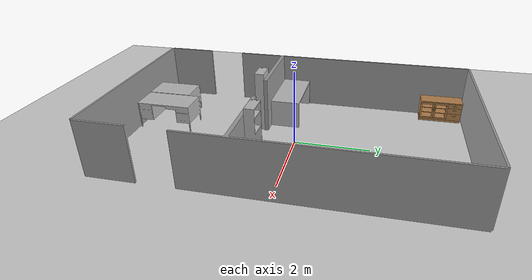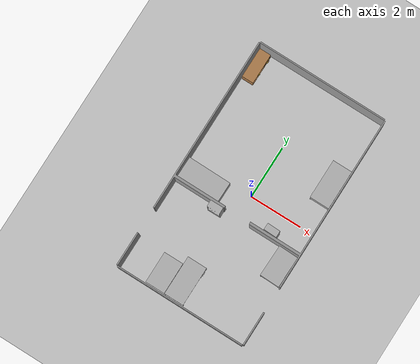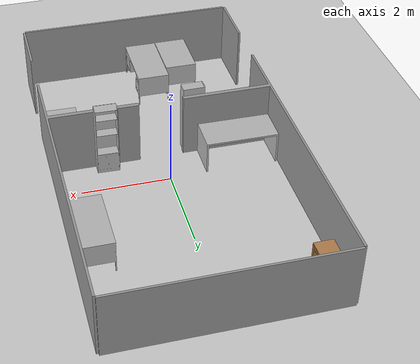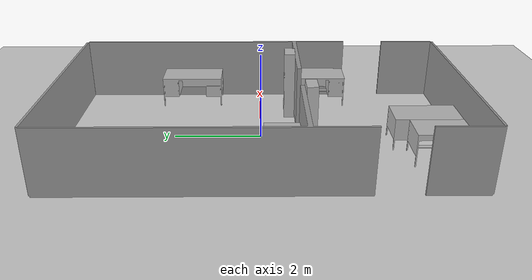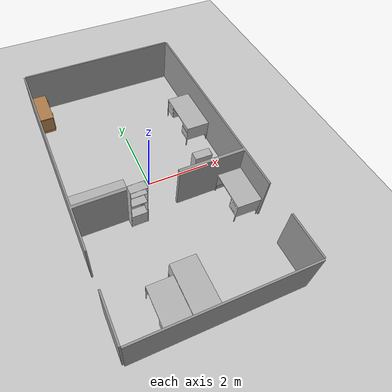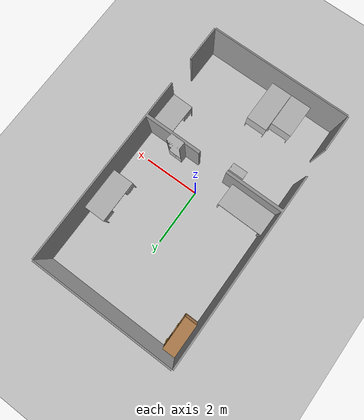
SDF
<sdf version="1.4">
 <world name="default">
  <scene>
   <ambient>0.5 0.5 0.5 1</ambient>
   <shadows>0</shadows>
   <grid>0</grid>
   <background>0.7 0.7 0.7 1</background>
  </scene>
  <physics type="ode">
   <real_time_update_rate>500.0</real_time_update_rate>
   <max_step_size>0.002</max_step_size>
   <ode><solver><type>quick</type><iters>100</iters></solver><constraints><cfm>0.0001</cfm></constraints></ode>
  </physics>
  <light name="user_directional_light_0" type="directional">
   <pose>0 0 5 0 -0 0</pose>
   <diffuse>0.5 0.5 0.5 1</diffuse>
   <specular>0.1 0.1 0.1 1</specular>
   <direction>0.1 0.1 -0.9</direction>
   <attenuation>
    <range>20</range>
    <constant>0.5</constant>
    <linear>0.01</linear>
    <quadratic>0.001</quadratic>
   </attenuation>
  </light>
  <model name="rnd_room_c3_a">
   <link name="link_0">
    <inertial>
     <mass>1</mass>
     <inertia>
      <ixx>0.166667</ixx>
      <ixy>0</ixy>
      <ixz>0</ixz>
      <iyy>0.166667</iyy>
      <iyz>0</iyz>
      <izz>0.166667</izz>
     </inertia>
    </inertial>
    <visual name="visual">
     <geometry><mesh><uri>model://RandomRooms/rnd_room_c2_06.dae</uri><scale>1 1 1</scale></mesh></geometry>
     <material>
      <lighting>1</lighting>
      <script><uri>model://RandomRooms/rnd_room_c2_06.dae</uri><name>Gazebo/Grey</name></script>
      <shader type="pixel"><normal_map>__default__</normal_map></shader>
     </material>
    </visual>
    <collision name="collision">
     <geometry><mesh><uri>model://RandomRooms/rnd_room_c2_06.dae</uri><scale>1 1 1</scale></mesh></geometry>
     <surface>
      <friction>
       <ode><mu>1</mu><mu2>1</mu2><fdir1>0 0 0</fdir1><slip1>0</slip1><slip2>0</slip2></ode>
       <torsional>
        <coefficient>1</coefficient>
        <patch_radius>0</patch_radius>
        <surface_radius>0</surface_radius>
        <use_patch_radius>1</use_patch_radius>
        <ode><slip>0</slip></ode>
       </torsional>
      </friction>
      <bounce><restitution_coefficient>0</restitution_coefficient><threshold>1e+06</threshold></bounce>
      <contact>
       <collide_without_contact>0</collide_without_contact>
       <collide_without_contact_bitmask>1</collide_without_contact_bitmask>
       <collide_bitmask>1</collide_bitmask>
       <ode>
        <soft_cfm>0</soft_cfm>
        <soft_erp>0.2</soft_erp>
        <kp>1e+13</kp>
        <kd>1</kd>
        <max_vel>0.01</max_vel>
        <min_depth>0</min_depth>
       </ode>
       <bullet>
        <split_impulse>1</split_impulse>
        <split_impulse_penetration_threshold>-0.01</split_impulse_penetration_threshold>
        <soft_cfm>0</soft_cfm>
        <soft_erp>0.2</soft_erp>
        <kp>1e+13</kp>
        <kd>1</kd>
       </bullet>
      </contact>
     </surface>
    </collision>
   </link>
   <static>1</static>
  </model>
  <model name="gplane">
   <link name="body">
    <collision name="gplane_coll">
     <geometry><plane><normal>0 0 1</normal><size>25 25</size></plane></geometry>
     <surface><contact><ode><kp>1e+06</kp><kd>1</kd></ode></contact></surface>
     <laser_retro>2000</laser_retro>
    </collision>
    <visual name="gplane_vis">
     <geometry><plane><normal>0 0 1</normal><size>25 25</size></plane></geometry>
     <material>
      <script>
       <uri>model://base_materials/carpet/scripts</uri>
       <uri>model://base_materials/carpet/textures</uri>
       <name>carpet/carpet01</name>
      </script>
     </material>
     <cast_shadows>0</cast_shadows>
    </visual>
    <velocity_decay><linear>0</linear><angular>0</angular></velocity_decay>
   </link>
   <static>1</static>
  </model>
  <model name="Shelf_02_1">
   <link name="link_0">
    <inertial>
     <mass>12</mass>
     <inertia>
      <ixx>0.166667</ixx>
      <ixy>0</ixy>
      <ixz>0</ixz>
      <iyy>0.166667</iyy>
      <iyz>0</iyz>
      <izz>0.166667</izz>
     </inertia>
    </inertial>
    <visual name="visual">
     <geometry><mesh><uri>model://BioRoboticsLab/meshes/Shelf_02.dae</uri><scale>1 1 1</scale></mesh></geometry>
     <material><lighting>1</lighting><shader type="pixel"/></material>
    </visual>
    <collision name="collision">
     <geometry><mesh><uri>model://BioRoboticsLab/meshes/Shelf_02.dae</uri><scale>1 1 1</scale></mesh></geometry>
     <surface>
      <friction>
       <ode><mu>1</mu><mu2>1</mu2><fdir1>0 0 0</fdir1><slip1>0</slip1><slip2>0</slip2></ode>
       <torsional>
        <coefficient>1</coefficient>
        <patch_radius>0</patch_radius>
        <surface_radius>0</surface_radius>
        <use_patch_radius>1</use_patch_radius>
        <ode><slip>0</slip></ode>
       </torsional>
      </friction>
      <bounce><restitution_coefficient>0</restitution_coefficient><threshold>1e+06</threshold></bounce>
      <contact>
       <collide_without_contact>0</collide_without_contact>
       <collide_without_contact_bitmask>1</collide_without_contact_bitmask>
       <collide_bitmask>1</collide_bitmask>
       <ode>
        <soft_cfm>0</soft_cfm>
        <soft_erp>0.2</soft_erp>
        <kp>1e+13</kp>
        <kd>1</kd>
        <max_vel>0.01</max_vel>
        <min_depth>0</min_depth>
       </ode>
       <bullet>
        <split_impulse>1</split_impulse>
        <split_impulse_penetration_threshold>-0.01</split_impulse_penetration_threshold>
        <soft_cfm>0</soft_cfm>
        <soft_erp>0.2</soft_erp>
        <kp>1e+13</kp>
        <kd>1</kd>
       </bullet>
      </contact>
     </surface>
    </collision>
   </link>
   <static>1</static>
   <pose>1.27283 -0.713664 -0 0 0 -0.021597</pose>
  </model>
  <model name="Shelf_02_2">
   <link name="link_0">
    <inertial>
     <mass>12</mass>
     <inertia>
      <ixx>0.166667</ixx>
      <ixy>0</ixy>
      <ixz>0</ixz>
      <iyy>0.166667</iyy>
      <iyz>0</iyz>
      <izz>0.166667</izz>
     </inertia>
    </inertial>
    <visual name="visual">
     <geometry><mesh><uri>model://BioRoboticsLab/meshes/Shelf_02.dae</uri><scale>1 1 1</scale></mesh></geometry>
     <material><lighting>1</lighting><shader type="pixel"/></material>
    </visual>
    <collision name="collision">
     <geometry><mesh><uri>model://BioRoboticsLab/meshes/Shelf_02.dae</uri><scale>1 1 1</scale></mesh></geometry>
     <surface>
      <friction>
       <ode><mu>1</mu><mu2>1</mu2><fdir1>0 0 0</fdir1><slip1>0</slip1><slip2>0</slip2></ode>
       <torsional>
        <coefficient>1</coefficient>
        <patch_radius>0</patch_radius>
        <surface_radius>0</surface_radius>
        <use_patch_radius>1</use_patch_radius>
        <ode><slip>0</slip></ode>
       </torsional>
      </friction>
      <bounce><restitution_coefficient>0</restitution_coefficient><threshold>1e+06</threshold></bounce>
      <contact>
       <collide_without_contact>0</collide_without_contact>
       <collide_without_contact_bitmask>1</collide_without_contact_bitmask>
       <collide_bitmask>1</collide_bitmask>
       <ode>
        <soft_cfm>0</soft_cfm>
        <soft_erp>0.2</soft_erp>
        <kp>1e+13</kp>
        <kd>1</kd>
        <max_vel>0.01</max_vel>
        <min_depth>0</min_depth>
       </ode>
       <bullet>
        <split_impulse>1</split_impulse>
        <split_impulse_penetration_threshold>-0.01</split_impulse_penetration_threshold>
        <soft_cfm>0</soft_cfm>
        <soft_erp>0.2</soft_erp>
        <kp>1e+13</kp>
        <kd>1</kd>
       </bullet>
      </contact>
     </surface>
    </collision>
   </link>
   <static>1</static>
   <pose>-0.772381 -1.07645 0 0 -0 -3.13241</pose>
  </model>
  <model name="Desk_03_1">
   <link name="link_0">
    <inertial>
     <mass>25</mass>
     <inertia>
      <ixx>0.166667</ixx>
      <ixy>0</ixy>
      <ixz>0</ixz>
      <iyy>0.166667</iyy>
      <iyz>0</iyz>
      <izz>0.166667</izz>
     </inertia>
    </inertial>
    <visual name="visual">
     <geometry><mesh><uri>model://BioRoboticsLab/meshes/Desk_03.dae</uri><scale>1 1 1</scale></mesh></geometry>
     <material><lighting>1</lighting><shader type="pixel"/></material>
    </visual>
    <collision name="collision">
     <geometry><mesh><uri>model://BioRoboticsLab/meshes/Desk_03.dae</uri><scale>1 1 1</scale></mesh></geometry>
     <surface>
      <friction>
       <ode><mu>1</mu><mu2>1</mu2><fdir1>0 0 0</fdir1><slip1>0</slip1><slip2>0</slip2></ode>
       <torsional>
        <coefficient>1</coefficient>
        <patch_radius>0</patch_radius>
        <surface_radius>0</surface_radius>
        <use_patch_radius>1</use_patch_radius>
        <ode><slip>0</slip></ode>
       </torsional>
      </friction>
      <bounce><restitution_coefficient>0</restitution_coefficient><threshold>1e+06</threshold></bounce>
      <contact>
       <collide_without_contact>0</collide_without_contact>
       <collide_without_contact_bitmask>1</collide_without_contact_bitmask>
       <collide_bitmask>1</collide_bitmask>
       <ode>
        <soft_cfm>0</soft_cfm>
        <soft_erp>0.2</soft_erp>
        <kp>1e+13</kp>
        <kd>1</kd>
        <max_vel>0.01</max_vel>
        <min_depth>0</min_depth>
       </ode>
       <bullet>
        <split_impulse>1</split_impulse>
        <split_impulse_penetration_threshold>-0.01</split_impulse_penetration_threshold>
        <soft_cfm>0</soft_cfm>
        <soft_erp>0.2</soft_erp>
        <kp>1e+13</kp>
        <kd>1</kd>
       </bullet>
      </contact>
     </surface>
    </collision>
   </link>
   <static>1</static>
   <pose>-1.08107 -3.84997 0 0 -0 1.57211</pose>
  </model>
  <model name="Desk_01_1">
   <link name="link_0">
    <inertial>
     <mass>35</mass>
     <inertia>
      <ixx>0.166667</ixx>
      <ixy>0</ixy>
      <ixz>0</ixz>
      <iyy>0.166667</iyy>
      <iyz>0</iyz>
      <izz>0.166667</izz>
     </inertia>
    </inertial>
    <visual name="visual">
     <geometry><mesh><uri>model://BioRoboticsLab/meshes/Desk_01.dae</uri><scale>1 1 1</scale></mesh></geometry>
     <material><lighting>1</lighting><shader type="pixel"/></material>
    </visual>
    <collision name="collision">
     <geometry><mesh><uri>model://BioRoboticsLab/meshes/Desk_01.dae</uri><scale>1 1 1</scale></mesh></geometry>
     <surface>
      <friction>
       <ode><mu>1</mu><mu2>1</mu2><fdir1>0 0 0</fdir1><slip1>0</slip1><slip2>0</slip2></ode>
       <torsional>
        <coefficient>1</coefficient>
        <patch_radius>0</patch_radius>
        <surface_radius>0</surface_radius>
        <use_patch_radius>1</use_patch_radius>
        <ode><slip>0</slip></ode>
       </torsional>
      </friction>
      <bounce><restitution_coefficient>0</restitution_coefficient><threshold>1e+06</threshold></bounce>
      <contact>
       <collide_without_contact>0</collide_without_contact>
       <collide_without_contact_bitmask>1</collide_without_contact_bitmask>
       <collide_bitmask>1</collide_bitmask>
       <ode>
        <soft_cfm>0</soft_cfm>
        <soft_erp>0.2</soft_erp>
        <kp>1e+13</kp>
        <kd>1</kd>
        <max_vel>0.01</max_vel>
        <min_depth>0</min_depth>
       </ode>
       <bullet>
        <split_impulse>1</split_impulse>
        <split_impulse_penetration_threshold>-0.01</split_impulse_penetration_threshold>
        <soft_cfm>0</soft_cfm>
        <soft_erp>0.2</soft_erp>
        <kp>1e+13</kp>
        <kd>1</kd>
       </bullet>
      </contact>
     </surface>
    </collision>
   </link>
   <static>1</static>
   <pose>-0.320742 -3.69864 0 0 -0 -1.57121</pose>
  </model>
  <model name="Desk_04_1">
   <link name="link_0">
    <inertial>
     <mass>15</mass>
     <inertia>
      <ixx>0.166667</ixx>
      <ixy>0</ixy>
      <ixz>0</ixz>
      <iyy>0.166667</iyy>
      <iyz>0</iyz>
      <izz>0.166667</izz>
     </inertia>
    </inertial>
    <visual name="visual">
     <geometry><mesh><uri>model://BioRoboticsLab/meshes/Desk_04.dae</uri><scale>1 1 1</scale></mesh></geometry>
     <material><lighting>1</lighting><shader type="pixel"/></material>
    </visual>
    <collision name="collision">
     <geometry><mesh><uri>model://BioRoboticsLab/meshes/Desk_04.dae</uri><scale>1 1 1</scale></mesh></geometry>
     <surface>
      <friction>
       <ode><mu>1</mu><mu2>1</mu2><fdir1>0 0 0</fdir1><slip1>0</slip1><slip2>0</slip2></ode>
       <torsional>
        <coefficient>1</coefficient>
        <patch_radius>0</patch_radius>
        <surface_radius>0</surface_radius>
        <use_patch_radius>1</use_patch_radius>
        <ode><slip>0</slip></ode>
       </torsional>
      </friction>
      <bounce><restitution_coefficient>0</restitution_coefficient><threshold>1e+06</threshold></bounce>
      <contact>
       <collide_without_contact>0</collide_without_contact>
       <collide_without_contact_bitmask>1</collide_without_contact_bitmask>
       <collide_bitmask>1</collide_bitmask>
       <ode>
        <soft_cfm>0</soft_cfm>
        <soft_erp>0.2</soft_erp>
        <kp>1e+13</kp>
        <kd>1</kd>
        <max_vel>0.01</max_vel>
        <min_depth>0</min_depth>
       </ode>
       <bullet>
        <split_impulse>1</split_impulse>
        <split_impulse_penetration_threshold>-0.01</split_impulse_penetration_threshold>
        <soft_cfm>0</soft_cfm>
        <soft_erp>0.2</soft_erp>
        <kp>1e+13</kp>
        <kd>1</kd>
       </bullet>
      </contact>
     </surface>
    </collision>
   </link>
   <static>1</static>
   <pose>2.10873 -1.5741 0 0 -0 1.55</pose>
  </model>
  <model name="Desk_01_2">
   <link name="link_0">
    <inertial>
     <mass>35</mass>
     <inertia>
      <ixx>0.166667</ixx>
      <ixy>0</ixy>
      <ixz>0</ixz>
      <iyy>0.166667</iyy>
      <iyz>0</iyz>
      <izz>0.166667</izz>
     </inertia>
    </inertial>
    <visual name="visual">
     <geometry><mesh><uri>model://BioRoboticsLab/meshes/Desk_01.dae</uri><scale>1 1 1</scale></mesh></geometry>
     <material><lighting>1</lighting><shader type="pixel"/></material>
    </visual>
    <collision name="collision">
     <geometry><mesh><uri>model://BioRoboticsLab/meshes/Desk_01.dae</uri><scale>1 1 1</scale></mesh></geometry>
     <surface>
      <friction>
       <ode><mu>1</mu><mu2>1</mu2><fdir1>0 0 0</fdir1><slip1>0</slip1><slip2>0</slip2></ode>
       <torsional>
        <coefficient>1</coefficient>
        <patch_radius>0</patch_radius>
        <surface_radius>0</surface_radius>
        <use_patch_radius>1</use_patch_radius>
        <ode><slip>0</slip></ode>
       </torsional>
      </friction>
      <bounce><restitution_coefficient>0</restitution_coefficient><threshold>1e+06</threshold></bounce>
      <contact>
       <collide_without_contact>0</collide_without_contact>
       <collide_without_contact_bitmask>1</collide_without_contact_bitmask>
       <collide_bitmask>1</collide_bitmask>
       <ode>
        <soft_cfm>0</soft_cfm>
        <soft_erp>0.2</soft_erp>
        <kp>1e+13</kp>
        <kd>1</kd>
        <max_vel>0.01</max_vel>
        <min_depth>0</min_depth>
       </ode>
       <bullet>
        <split_impulse>1</split_impulse>
        <split_impulse_penetration_threshold>-0.01</split_impulse_penetration_threshold>
        <soft_cfm>0</soft_cfm>
        <soft_erp>0.2</soft_erp>
        <kp>1e+13</kp>
        <kd>1</kd>
       </bullet>
      </contact>
     </surface>
    </collision>
   </link>
   <static>1</static>
   <pose>2.11313 1.7549 0 0 -0 1.57002</pose>
  </model>
  <model name="Table_02_1">
   <link name="link_0">
    <inertial>
     <mass>15</mass>
     <inertia>
      <ixx>0.166667</ixx>
      <ixy>0</ixy>
      <ixz>0</ixz>
      <iyy>0.166667</iyy>
      <iyz>0</iyz>
      <izz>0.166667</izz>
     </inertia>
    </inertial>
    <visual name="visual">
     <geometry><mesh><uri>model://BioRoboticsLab/meshes/Table_02.dae</uri><scale>1 1 1</scale></mesh></geometry>
     <material><lighting>1</lighting><shader type="pixel"/></material>
    </visual>
    <collision name="collision">
     <geometry><mesh><uri>model://BioRoboticsLab/meshes/Table_02.dae</uri><scale>1 1 1</scale></mesh></geometry>
     <surface>
      <friction>
       <ode><mu>1</mu><mu2>1</mu2><fdir1>0 0 0</fdir1><slip1>0</slip1><slip2>0</slip2></ode>
       <torsional>
        <coefficient>1</coefficient>
        <patch_radius>0</patch_radius>
        <surface_radius>0</surface_radius>
        <use_patch_radius>1</use_patch_radius>
        <ode><slip>0</slip></ode>
       </torsional>
      </friction>
      <bounce><restitution_coefficient>0</restitution_coefficient><threshold>1e+06</threshold></bounce>
      <contact>
       <collide_without_contact>0</collide_without_contact>
       <collide_without_contact_bitmask>1</collide_without_contact_bitmask>
       <collide_bitmask>1</collide_bitmask>
       <ode>
        <soft_cfm>0</soft_cfm>
        <soft_erp>0.2</soft_erp>
        <kp>1e+13</kp>
        <kd>1</kd>
        <max_vel>0.01</max_vel>
        <min_depth>0</min_depth>
       </ode>
       <bullet>
        <split_impulse>1</split_impulse>
        <split_impulse_penetration_threshold>-0.01</split_impulse_penetration_threshold>
        <soft_cfm>0</soft_cfm>
        <soft_erp>0.2</soft_erp>
        <kp>1e+13</kp>
        <kd>1</kd>
       </bullet>
      </contact>
     </surface>
    </collision>
   </link>
   <static>1</static>
   <pose>-1.66141 -0.509451 0 0 0 -0.008499</pose>
  </model>
  <model name="openable_living_sideboard">
   <link name="body">
    <inertial>
     <mass>10</mass>
     <inertia><ixx>1</ixx><ixy>0</ixy><ixz>0</ixz><iyy>1</iyy><iyz>0</iyz><izz>1</izz></inertia>
    </inertial>
    <visual name="left_board">
     <pose>-0.23 0.01 0.3375 0 -0 0</pose>
     <geometry><box><size>0.42 0.02 0.495</size></box></geometry>
     <material>
      <script><uri>model://base_materials/wood/scripts/wood.material</uri><name>base_materials/wood</name></script>
     </material>
    </visual>
    <collision name="collision_left_board">
     <pose>-0.23 0.01 0.3375 0 -0 0</pose>
     <geometry><box><size>0.42 0.02 0.495</size></box></geometry>
    </collision>
    <visual name="back_board">
     <pose>-0.42 0.575 0.2925 0 -0 0</pose>
     <geometry><box><size>0.02 1.11 0.585</size></box></geometry>
     <material>
      <script><uri>model://base_materials/wood/scripts/wood.material</uri><name>base_materials/wood</name></script>
     </material>
    </visual>
    <collision name="collision_back_board">
     <pose>-0.42 0.575 0.2925 0 -0 0</pose>
     <geometry><box><size>0.02 1.11 0.585</size></box></geometry>
    </collision>
    <visual name="right_board">
     <pose>-0.23 1.14 0.3375 0 -0 0</pose>
     <geometry><box><size>0.42 0.02 0.495</size></box></geometry>
     <material>
      <script><uri>model://base_materials/wood/scripts/wood.material</uri><name>base_materials/wood</name></script>
     </material>
    </visual>
    <collision name="collision_right_board">
     <pose>-0.23 1.14 0.3375 0 -0 0</pose>
     <geometry><box><size>0.42 0.02 0.495</size></box></geometry>
    </collision>
    <visual name="center_vertical_board1">
     <pose>-0.23 0.74 0.3375 0 -0 0</pose>
     <geometry><box><size>0.42 0.02 0.495</size></box></geometry>
     <material>
      <script><uri>model://base_materials/wood/scripts/wood.material</uri><name>base_materials/wood</name></script>
     </material>
    </visual>
    <collision name="collision_center_vertical_board1">
     <pose>-0.23 0.74 0.3375 0 -0 0</pose>
     <geometry><box><size>0.42 0.02 0.495</size></box></geometry>
    </collision>
    <visual name="top_board">
     <pose>-0.22 0.575 0.6 0 -0 0</pose>
     <geometry><box><size>0.44 1.15 0.03</size></box></geometry>
     <material>
      <script><uri>model://base_materials/wood/scripts/wood.material</uri><name>base_materials/wood</name></script>
     </material>
    </visual>
    <collision name="collision_top_board">
     <pose>-0.22 0.575 0.6 0 -0 0</pose>
     <geometry><box><size>0.44 1.15 0.03</size></box></geometry>
    </collision>
    <visual name="bottom_board">
     <pose>-0.23 0.575 0.045 0 -0 0</pose>
     <geometry><box><size>0.42 1.15 0.09</size></box></geometry>
     <material>
      <script><uri>model://base_materials/wood/scripts/wood.material</uri><name>base_materials/wood</name></script>
     </material>
    </visual>
    <collision name="collision_bottom_board">
     <pose>-0.23 0.575 0.045 0 -0 0</pose>
     <geometry><box><size>0.42 1.15 0.09</size></box></geometry>
    </collision>
    <visual name="1st_shelf">
     <pose>-0.225 0.37 0.259 0 -0 0</pose>
     <geometry><box><size>0.36 0.72 0.018</size></box></geometry>
     <material>
      <script><uri>model://base_materials/wood/scripts/wood.material</uri><name>base_materials/wood</name></script>
     </material>
    </visual>
    <collision name="collision_1st_shelf">
     <pose>-0.225 0.37 0.259 0 -0 0</pose>
     <geometry><box><size>0.36 0.72 0.018</size></box></geometry>
    </collision>
    <visual name="2nd_shelf">
     <pose>-0.225 0.37 0.407 0 -0 0</pose>
     <geometry><box><size>0.36 0.72 0.018</size></box></geometry>
     <material>
      <script><uri>model://base_materials/wood/scripts/wood.material</uri><name>base_materials/wood</name></script>
     </material>
    </visual>
    <collision name="collision_2nd_shelf">
     <pose>-0.225 0.37 0.407 0 -0 0</pose>
     <geometry><box><size>0.36 0.72 0.018</size></box></geometry>
    </collision>
    <visual name="2nd_drawer">
     <pose>-0.2025 0.95 0.37 0 -0 0</pose>
     <geometry><box><size>0.405 0.38 0.17</size></box></geometry>
     <material>
      <script><uri>model://base_materials/wood/scripts/wood.material</uri><name>base_materials/wood</name></script>
     </material>
    </visual>
    <collision name="collision_2nd_drawer">
     <pose>-0.2025 0.95 0.37 0 -0 0</pose>
     <geometry><box><size>0.405 0.38 0.17</size></box></geometry>
    </collision>
    <visual name="2nd_drawer_handle_l1">
     <pose>0.015 0.9015 0.405 3.14159 1.57079 3.14159</pose>
     <geometry><cylinder><radius>0.006</radius><length>0.03</length></cylinder></geometry>
     <material>
      <ambient>1 0.84314 0 1</ambient>
      <diffuse>1 0.84314 0 1</diffuse>
      <specular>0.1 0.1 0.1 1</specular>
     </material>
    </visual>
    <collision name="collision_2nd_drawer_handle_l1">
     <pose>0.015 0.9015 0.405 3.14159 1.57079 3.14159</pose>
     <geometry><cylinder><radius>0.006</radius><length>0.03</length></cylinder></geometry>
    </collision>
    <visual name="2nd_drawer_handle_l2">
     <pose>0.03 0.9015 0.405 0 -0 0</pose>
     <geometry><sphere><radius>0.006</radius></sphere></geometry>
     <material>
      <ambient>1 0.84314 0 1</ambient>
      <diffuse>1 0.84314 0 1</diffuse>
      <specular>0.1 0.1 0.1 1</specular>
     </material>
    </visual>
    <collision name="collision_2nd_drawer_handle_l2">
     <pose>0.03 0.9015 0.405 0 -0 0</pose>
     <geometry><sphere><radius>0.006</radius></sphere></geometry>
    </collision>
    <visual name="2nd_drawer_handle_r1">
     <pose>0.015 0.9985 0.405 3.14159 1.57079 3.14159</pose>
     <geometry><cylinder><radius>0.006</radius><length>0.03</length></cylinder></geometry>
     <material>
      <ambient>1 0.84314 0 1</ambient>
      <diffuse>1 0.84314 0 1</diffuse>
      <specular>0.1 0.1 0.1 1</specular>
     </material>
    </visual>
    <collision name="collision_2nd_drawer_handle_r1">
     <pose>0.015 0.9985 0.405 3.14159 1.57079 3.14159</pose>
     <geometry><cylinder><radius>0.006</radius><length>0.03</length></cylinder></geometry>
    </collision>
    <visual name="2nd_drawer_handle_r2">
     <pose>0.03 0.9985 0.405 0 -0 0</pose>
     <geometry><sphere><radius>0.006</radius></sphere></geometry>
     <material>
      <ambient>1 0.84314 0 1</ambient>
      <diffuse>1 0.84314 0 1</diffuse>
      <specular>0.1 0.1 0.1 1</specular>
     </material>
    </visual>
    <collision name="collision_2nd_drawer_handle_r2">
     <pose>0.03 0.9985 0.405 0 -0 0</pose>
     <geometry><sphere><radius>0.006</radius></sphere></geometry>
    </collision>
    <visual name="2nd_drawer_handle_center">
     <pose>0.03 0.95 0.405 1.5708 -0 0</pose>
     <geometry><cylinder><radius>0.006</radius><length>0.097</length></cylinder></geometry>
     <material>
      <script><uri>model://base_materials/wood/scripts/wood.material</uri><name>base_materials/wood</name></script>
     </material>
    </visual>
    <collision name="collision_2nd_drawer_handle_center">
     <pose>0.03 0.95 0.405 1.5708 -0 0</pose>
     <geometry><cylinder><radius>0.006</radius><length>0.097</length></cylinder></geometry>
    </collision>
    <visual name="3rd_drawer">
     <pose>-0.2025 0.95 0.18 0 -0 0</pose>
     <geometry><box><size>0.405 0.38 0.21</size></box></geometry>
     <material>
      <script><uri>model://base_materials/wood/scripts/wood.material</uri><name>base_materials/wood</name></script>
     </material>
    </visual>
    <collision name="collision_3rd_drawer">
     <pose>-0.2025 0.95 0.18 0 -0 0</pose>
     <geometry><box><size>0.405 0.38 0.21</size></box></geometry>
    </collision>
    <visual name="3rd_drawer_handle_l1">
     <pose>0.015 0.9015 0.235 3.14159 1.57079 3.14159</pose>
     <geometry><cylinder><radius>0.006</radius><length>0.03</length></cylinder></geometry>
     <material>
      <ambient>1 0.84314 0 1</ambient>
      <diffuse>1 0.84314 0 1</diffuse>
      <specular>0.1 0.1 0.1 1</specular>
     </material>
    </visual>
    <collision name="collision_3rd_drawer_handle_l1">
     <pose>0.015 0.9015 0.235 3.14159 1.57079 3.14159</pose>
     <geometry><cylinder><radius>0.006</radius><length>0.03</length></cylinder></geometry>
    </collision>
    <visual name="3rd_drawer_handle_l2">
     <pose>0.03 0.9015 0.235 0 -0 0</pose>
     <geometry><sphere><radius>0.006</radius></sphere></geometry>
     <material>
      <ambient>1 0.84314 0 1</ambient>
      <diffuse>1 0.84314 0 1</diffuse>
      <specular>0.1 0.1 0.1 1</specular>
     </material>
    </visual>
    <collision name="collision_3rd_drawer_handle_l2">
     <pose>0.03 0.9015 0.235 0 -0 0</pose>
     <geometry><sphere><radius>0.006</radius></sphere></geometry>
    </collision>
    <visual name="3rd_drawer_handle_r1">
     <pose>0.015 0.9985 0.235 3.14159 1.57079 3.14159</pose>
     <geometry><cylinder><radius>0.006</radius><length>0.03</length></cylinder></geometry>
     <material>
      <ambient>1 0.84314 0 1</ambient>
      <diffuse>1 0.84314 0 1</diffuse>
      <specular>0.1 0.1 0.1 1</specular>
     </material>
    </visual>
    <collision name="collision_3rd_drawer_handle_r1">
     <pose>0.015 0.9985 0.235 3.14159 1.57079 3.14159</pose>
     <geometry><cylinder><radius>0.006</radius><length>0.03</length></cylinder></geometry>
    </collision>
    <visual name="3rd_drawer_handle_r2">
     <pose>0.03 0.9985 0.235 0 -0 0</pose>
     <geometry><sphere><radius>0.006</radius></sphere></geometry>
     <material>
      <ambient>1 0.84314 0 1</ambient>
      <diffuse>1 0.84314 0 1</diffuse>
      <specular>0.1 0.1 0.1 1</specular>
     </material>
    </visual>
    <collision name="collision_3rd_drawer_handle_r2">
     <pose>0.03 0.9985 0.235 0 -0 0</pose>
     <geometry><sphere><radius>0.006</radius></sphere></geometry>
    </collision>
    <visual name="3rd_drawer_handle_center">
     <pose>0.03 0.95 0.235 1.5708 -0 0</pose>
     <geometry><cylinder><radius>0.006</radius><length>0.097</length></cylinder></geometry>
     <material>
      <script><uri>model://base_materials/wood/scripts/wood.material</uri><name>base_materials/wood</name></script>
     </material>
    </visual>
    <collision name="collision_3rd_drawer_handle_center">
     <pose>0.03 0.95 0.235 1.5708 -0 0</pose>
     <geometry><cylinder><radius>0.006</radius><length>0.097</length></cylinder></geometry>
    </collision>
   </link>
   <link name="right_door">
    <visual name="right_door_left_frame">
     <pose>-0.01 0.405 0.3275 0 -0 0</pose>
     <geometry><box><size>0.02 0.05 0.405</size></box></geometry>
     <material>
      <script><uri>model://base_materials/wood/scripts/wood.material</uri><name>base_materials/wood</name></script>
     </material>
    </visual>
    <collision name="collision_right_door_left_frame">
     <pose>-0.01 0.405 0.3275 0 -0 0</pose>
     <geometry><box><size>0.02 0.05 0.405</size></box></geometry>
    </collision>
    <visual name="right_door_right_frame">
     <pose>-0.01 0.735 0.3275 0 -0 0</pose>
     <geometry><box><size>0.02 0.05 0.405</size></box></geometry>
     <material>
      <script><uri>model://base_materials/wood/scripts/wood.material</uri><name>base_materials/wood</name></script>
     </material>
    </visual>
    <collision name="collision_right_door_right_frame">
     <pose>-0.01 0.735 0.3275 0 -0 0</pose>
     <geometry><box><size>0.02 0.05 0.405</size></box></geometry>
    </collision>
    <visual name="right_door_top_frame">
     <pose>-0.01 0.57 0.5575 0 -0 0</pose>
     <geometry><box><size>0.02 0.38 0.055</size></box></geometry>
     <material>
      <script><uri>model://base_materials/wood/scripts/wood.material</uri><name>base_materials/wood</name></script>
     </material>
    </visual>
    <collision name="collision_right_door_top_frame">
     <pose>-0.01 0.57 0.5575 0 -0 0</pose>
     <geometry><box><size>0.02 0.38 0.055</size></box></geometry>
    </collision>
    <visual name="right_door_bottom_frame">
     <pose>-0.01 0.57 0.1 0 -0 0</pose>
     <geometry><box><size>0.02 0.38 0.05</size></box></geometry>
     <material>
      <script><uri>model://base_materials/wood/scripts/wood.material</uri><name>base_materials/wood</name></script>
     </material>
    </visual>
    <collision name="collision_right_door_bottom_frame">
     <pose>-0.01 0.57 0.1 0 -0 0</pose>
     <geometry><box><size>0.02 0.38 0.05</size></box></geometry>
    </collision>
    <visual name="right_door_handle_top1">
     <pose>0.015 0.405 0.4475 3.14159 1.57079 3.14159</pose>
     <geometry><cylinder><radius>0.006</radius><length>0.03</length></cylinder></geometry>
     <material>
      <ambient>1 0.84314 0 1</ambient>
      <diffuse>1 0.84314 0 1</diffuse>
      <specular>0.1 0.1 0.1 1</specular>
     </material>
    </visual>
    <collision name="collision_right_door_handle_top1">
     <pose>0.015 0.405 0.4475 3.14159 1.57079 3.14159</pose>
     <geometry><cylinder><radius>0.006</radius><length>0.03</length></cylinder></geometry>
    </collision>
    <visual name="right_door_handle_top2">
     <pose>0.03 0.405 0.4475 0 -0 0</pose>
     <geometry><sphere><radius>0.006</radius></sphere></geometry>
     <material>
      <ambient>1 0.84314 0 1</ambient>
      <diffuse>1 0.84314 0 1</diffuse>
      <specular>0.1 0.1 0.1 1</specular>
     </material>
    </visual>
    <collision name="collision_right_door_handle_top2">
     <pose>0.03 0.405 0.4475 0 -0 0</pose>
     <geometry><sphere><radius>0.006</radius></sphere></geometry>
    </collision>
    <visual name="right_door_handle_bottom1">
     <pose>0.015 0.405 0.3505 3.14159 1.57079 3.14159</pose>
     <geometry><cylinder><radius>0.006</radius><length>0.03</length></cylinder></geometry>
     <material>
      <ambient>1 0.84314 0 1</ambient>
      <diffuse>1 0.84314 0 1</diffuse>
      <specular>0.1 0.1 0.1 1</specular>
     </material>
    </visual>
    <collision name="collision_right_door_handle_bottom1">
     <pose>0.015 0.405 0.3505 3.14159 1.57079 3.14159</pose>
     <geometry><cylinder><radius>0.006</radius><length>0.03</length></cylinder></geometry>
    </collision>
    <visual name="right_door_handle_bottom2">
     <pose>0.03 0.405 0.3505 0 -0 0</pose>
     <geometry><sphere><radius>0.006</radius></sphere></geometry>
     <material>
      <ambient>1 0.84314 0 1</ambient>
      <diffuse>1 0.84314 0 1</diffuse>
      <specular>0.1 0.1 0.1 1</specular>
     </material>
    </visual>
    <collision name="collision_right_door_handle_bottom2">
     <pose>0.03 0.405 0.3505 0 -0 0</pose>
     <geometry><sphere><radius>0.006</radius></sphere></geometry>
    </collision>
    <visual name="right_door_handle_center">
     <pose>0.03 0.405 0.399 0 -0 0</pose>
     <geometry><cylinder><radius>0.006</radius><length>0.097</length></cylinder></geometry>
     <material>
      <script><uri>model://base_materials/wood/scripts/wood.material</uri><name>base_materials/wood</name></script>
     </material>
    </visual>
    <collision name="collision_right_door_handle_center">
     <pose>0.03 0.4 0.399 0 -0 0</pose>
     <geometry><cylinder><radius>0.006</radius><length>0.097</length></cylinder></geometry>
    </collision>
    <velocity_decay><linear>0</linear><angular>0</angular></velocity_decay>
    <inertial>
     <inertia><ixx>1</ixx><ixy>0</ixy><ixz>0</ixz><iyy>1</iyy><iyz>0</iyz><izz>1</izz></inertia>
     <mass>1</mass>
    </inertial>
   </link>
   <link name="left_door">
    <visual name="left_door_left_frame">
     <pose>-0.01 0.025 0.3275 0 -0 0</pose>
     <geometry><box><size>0.02 0.05 0.405</size></box></geometry>
     <material>
      <script><uri>model://base_materials/wood/scripts/wood.material</uri><name>base_materials/wood</name></script>
     </material>
    </visual>
    <collision name="collision_left_door_left_frame">
     <pose>-0.01 0.025 0.3275 0 -0 0</pose>
     <geometry><box><size>0.02 0.05 0.405</size></box></geometry>
    </collision>
    <visual name="left_door_right_frame">
     <pose>-0.01 0.355 0.3275 0 -0 0</pose>
     <geometry><box><size>0.02 0.05 0.405</size></box></geometry>
     <material>
      <script><uri>model://base_materials/wood/scripts/wood.material</uri><name>base_materials/wood</name></script>
     </material>
    </visual>
    <collision name="collision_left_door_right_frame">
     <pose>-0.01 0.355 0.3275 0 -0 0</pose>
     <geometry><box><size>0.02 0.05 0.405</size></box></geometry>
    </collision>
    <visual name="left_door_handle_top1">
     <pose>0.015 0.355 0.4475 3.14159 1.57079 3.14159</pose>
     <geometry><cylinder><radius>0.006</radius><length>0.03</length></cylinder></geometry>
     <material>
      <ambient>1 0.84314 0 1</ambient>
      <diffuse>1 0.84314 0 1</diffuse>
      <specular>0.1 0.1 0.1 1</specular>
     </material>
    </visual>
    <collision name="collision_left_door_handle_top1">
     <pose>0.015 0.355 0.4475 3.14159 1.57079 3.14159</pose>
     <geometry><cylinder><radius>0.006</radius><length>0.03</length></cylinder></geometry>
    </collision>
    <visual name="left_door_handle_top2">
     <pose>0.03 0.355 0.4475 0 -0 0</pose>
     <geometry><sphere><radius>0.006</radius></sphere></geometry>
     <material>
      <ambient>1 0.84314 0 1</ambient>
      <diffuse>1 0.84314 0 1</diffuse>
      <specular>0.1 0.1 0.1 1</specular>
     </material>
    </visual>
    <collision name="collision_left_door_handle_top2">
     <pose>0.03 0.355 0.4475 0 -0 0</pose>
     <geometry><sphere><radius>0.006</radius></sphere></geometry>
    </collision>
    <visual name="left_door_handle_bottom1">
     <pose>0.015 0.355 0.3505 3.14159 1.57079 3.14159</pose>
     <geometry><cylinder><radius>0.006</radius><length>0.03</length></cylinder></geometry>
     <material>
      <ambient>1 0.84314 0 1</ambient>
      <diffuse>1 0.84314 0 1</diffuse>
      <specular>0.1 0.1 0.1 1</specular>
     </material>
    </visual>
    <collision name="collision_left_door_handle_bottom1">
     <pose>0.015 0.355 0.3505 3.14159 1.57079 3.14159</pose>
     <geometry><cylinder><radius>0.006</radius><length>0.03</length></cylinder></geometry>
    </collision>
    <visual name="left_door_handle_bottom2">
     <pose>0.03 0.355 0.3505 0 -0 0</pose>
     <geometry><sphere><radius>0.006</radius></sphere></geometry>
     <material>
      <ambient>1 0.84314 0 1</ambient>
      <diffuse>1 0.84314 0 1</diffuse>
      <specular>0.1 0.1 0.1 1</specular>
     </material>
    </visual>
    <collision name="collision_left_door_handle_bottom2">
     <pose>0.03 0.355 0.3505 0 -0 0</pose>
     <geometry><sphere><radius>0.006</radius></sphere></geometry>
    </collision>
    <visual name="left_door_handle_center">
     <pose>0.03 0.355 0.399 0 -0 0</pose>
     <geometry><cylinder><radius>0.006</radius><length>0.097</length></cylinder></geometry>
     <material>
      <script><uri>model://base_materials/wood/scripts/wood.material</uri><name>base_materials/wood</name></script>
     </material>
    </visual>
    <collision name="collision_left_door_handle_center">
     <pose>0.03 0.355 0.399 0 -0 0</pose>
     <geometry><cylinder><radius>0.006</radius><length>0.097</length></cylinder></geometry>
    </collision>
    <visual name="left_door_top_frame">
     <pose>-0.01 0.19 0.5575 0 -0 0</pose>
     <geometry><box><size>0.02 0.38 0.055</size></box></geometry>
     <material>
      <script><uri>model://base_materials/wood/scripts/wood.material</uri><name>base_materials/wood</name></script>
     </material>
    </visual>
    <collision name="collision_left_door_top_frame">
     <pose>-0.01 0.19 0.5575 0 -0 0</pose>
     <geometry><box><size>0.02 0.38 0.055</size></box></geometry>
    </collision>
    <visual name="left_door_bottom_frame">
     <pose>-0.01 0.19 0.1 0 -0 0</pose>
     <geometry><box><size>0.02 0.38 0.05</size></box></geometry>
     <material>
      <script><uri>model://base_materials/wood/scripts/wood.material</uri><name>base_materials/wood</name></script>
     </material>
    </visual>
    <collision name="collision_left_door_bottom_frame">
     <pose>-0.01 0.19 0.1 0 -0 0</pose>
     <geometry><box><size>0.02 0.38 0.05</size></box></geometry>
    </collision>
    <inertial>
     <inertia><ixx>1</ixx><ixy>0</ixy><ixz>0</ixz><iyy>1</iyy><iyz>0</iyz><izz>1</izz></inertia>
     <mass>1</mass>
    </inertial>
   </link>
   <link name="1st_drawer">
    <visual name="1st_drawer_bottom">
     <pose>-0.2025 0.945 0.48 0 -0 0</pose>
     <geometry><box><size>0.38 0.35 0.02</size></box></geometry>
     <material>
      <script><uri>model://base_materials/wood/scripts/wood.material</uri><name>base_materials/wood</name></script>
     </material>
    </visual>
    <collision name="collision_1st_drawer_bottom">
     <pose>-0.2025 0.945 0.48 0 -0 0</pose>
     <geometry><box><size>0.38 0.35 0.02</size></box></geometry>
    </collision>
    <visual name="1st_drawer_left">
     <pose>-0.2025 0.775 0.51 0 -0 0</pose>
     <geometry><box><size>0.4 0.02 0.1</size></box></geometry>
     <material>
      <script><uri>model://base_materials/wood/scripts/wood.material</uri><name>base_materials/wood</name></script>
     </material>
    </visual>
    <collision name="collision_1st_drawer_left">
     <pose>-0.2025 0.775 0.51 0 -0 0</pose>
     <geometry><box><size>0.4 0.02 0.1</size></box></geometry>
    </collision>
    <visual name="1st_drawer_right">
     <pose>-0.2025 1.12 0.51 0 -0 0</pose>
     <geometry><box><size>0.4 0.02 0.1</size></box></geometry>
     <material>
      <script><uri>model://base_materials/wood/scripts/wood.material</uri><name>base_materials/wood</name></script>
     </material>
    </visual>
    <collision name="collision_1st_drawer_right">
     <pose>-0.2025 1.12 0.51 0 -0 0</pose>
     <geometry><box><size>0.4 0.02 0.1</size></box></geometry>
    </collision>
    <visual name="1st_drawer_front">
     <pose>-0.01 0.95 0.52 0 -0 0</pose>
     <geometry><box><size>0.02 0.38 0.125</size></box></geometry>
     <material>
      <script><uri>model://base_materials/wood/scripts/wood.material</uri><name>base_materials/wood</name></script>
     </material>
    </visual>
    <collision name="collision_1st_drawer_front">
     <pose>-0.01 0.95 0.52 0 -0 0</pose>
     <geometry><box><size>0.02 0.38 0.125</size></box></geometry>
    </collision>
    <visual name="1st_drawer_back">
     <pose>-0.4 0.95 0.51 0 -0 0</pose>
     <geometry><box><size>0.02 0.36 0.095</size></box></geometry>
     <material>
      <script><uri>model://base_materials/wood/scripts/wood.material</uri><name>base_materials/wood</name></script>
     </material>
    </visual>
    <collision name="collision_1st_drawer_back">
     <pose>-0.4 0.95 0.51 0 -0 0</pose>
     <geometry><box><size>0.02 0.36 0.095</size></box></geometry>
    </collision>
    <visual name="1st_drawer_handle_l1">
     <pose>0.015 0.9015 0.535 3.14159 1.57079 3.14159</pose>
     <geometry><cylinder><radius>0.006</radius><length>0.03</length></cylinder></geometry>
     <material>
      <ambient>1 0.84314 0 1</ambient>
      <diffuse>1 0.84314 0 1</diffuse>
      <specular>0.1 0.1 0.1 1</specular>
     </material>
    </visual>
    <collision name="collision_1st_drawer_handle_l1">
     <pose>0.015 0.9015 0.535 3.14159 1.57079 3.14159</pose>
     <geometry><cylinder><radius>0.006</radius><length>0.03</length></cylinder></geometry>
    </collision>
    <visual name="1st_drawer_handle_l2">
     <pose>0.03 0.9015 0.535 0 -0 0</pose>
     <geometry><sphere><radius>0.006</radius></sphere></geometry>
     <material>
      <ambient>1 0.84314 0 1</ambient>
      <diffuse>1 0.84314 0 1</diffuse>
      <specular>0.1 0.1 0.1 1</specular>
     </material>
    </visual>
    <collision name="collision_1st_drawer_handle_l2">
     <pose>0.03 0.9015 0.535 0 -0 0</pose>
     <geometry><sphere><radius>0.006</radius></sphere></geometry>
    </collision>
    <visual name="1st_drawer_handle_r1">
     <pose>0.015 0.9985 0.535 3.14159 1.57079 3.14159</pose>
     <geometry><cylinder><radius>0.006</radius><length>0.03</length></cylinder></geometry>
     <material>
      <ambient>1 0.84314 0 1</ambient>
      <diffuse>1 0.84314 0 1</diffuse>
      <specular>0.1 0.1 0.1 1</specular>
     </material>
    </visual>
    <collision name="collision_1st_drawer_handle_r1">
     <pose>0.015 0.9985 0.535 3.14159 1.57079 3.14159</pose>
     <geometry><cylinder><radius>0.006</radius><length>0.03</length></cylinder></geometry>
    </collision>
    <visual name="1st_drawer_handle_r2">
     <pose>0.03 0.9985 0.535 0 -0 0</pose>
     <geometry><sphere><radius>0.006</radius></sphere></geometry>
     <material>
      <ambient>1 0.84314 0 1</ambient>
      <diffuse>1 0.84314 0 1</diffuse>
      <specular>0.1 0.1 0.1 1</specular>
     </material>
    </visual>
    <collision name="collision_1st_drawer_handle_r2">
     <pose>0.03 0.9985 0.535 0 -0 0</pose>
     <geometry><sphere><radius>0.006</radius></sphere></geometry>
    </collision>
    <visual name="1st_drawer_handle_center">
     <pose>0.03 0.95 0.535 1.5708 -0 0</pose>
     <geometry><cylinder><radius>0.006</radius><length>0.097</length></cylinder></geometry>
     <material>
      <script><uri>model://base_materials/wood/scripts/wood.material</uri><name>base_materials/wood</name></script>
     </material>
    </visual>
    <collision name="collision_1st_drawer_handle_center">
     <pose>0.03 0.95 0.535 1.5708 -0 0</pose>
     <geometry><cylinder><radius>0.006</radius><length>0.097</length></cylinder></geometry>
    </collision>
    <inertial>
     <inertia><ixx>1</ixx><ixy>0</ixy><ixz>0</ixz><iyy>1</iyy><iyz>0</iyz><izz>1</izz></inertia>
     <mass>1</mass>
    </inertial>
   </link>
   <joint name="1st_drawer" type="prismatic">
    <parent>body</parent>
    <child>1st_drawer</child>
    <pose>0 0.9 0.45 0 -0 0</pose>
    <axis>
     <xyz expressed_in="__model__">1 0 0</xyz>
     <limit><lower>0</lower><upper>0.3</upper></limit>
     <dynamics>
      <damping>1</damping>
      <friction>10</friction>
      <spring_reference>0</spring_reference>
      <spring_stiffness>0</spring_stiffness>
     </dynamics>
    </axis>
    <physics><ode><cfm_damping>1</cfm_damping><limit><cfm>0</cfm><erp>0.2</erp></limit></ode></physics>
   </joint>
   <joint name="right_door" type="revolute">
    <parent>body</parent>
    <child>right_door</child>
    <pose>-0.01 0.74 0.3 0 -0 0</pose>
    <axis>
     <xyz expressed_in="__model__">0 0 1</xyz>
     <limit><lower>0</lower><upper>2.61</upper></limit>
     <dynamics>
      <damping>1</damping>
      <friction>10</friction>
      <spring_reference>0</spring_reference>
      <spring_stiffness>0</spring_stiffness>
     </dynamics>
    </axis>
    <physics><ode><cfm_damping>1</cfm_damping><limit><cfm>0</cfm><erp>0.2</erp></limit></ode></physics>
   </joint>
   <joint name="left_door" type="revolute">
    <parent>body</parent>
    <child>left_door</child>
    <pose>-0.01 0.01 0.3 0 -0 0</pose>
    <axis>
     <xyz expressed_in="__model__">0 0 1</xyz>
     <limit><lower>-2.61</lower><upper>0</upper></limit>
     <dynamics>
      <damping>1</damping>
      <friction>10</friction>
      <spring_reference>0</spring_reference>
      <spring_stiffness>0</spring_stiffness>
     </dynamics>
    </axis>
    <physics><ode><cfm_damping>1</cfm_damping><limit><cfm>0</cfm><erp>0.2</erp></limit></ode></physics>
   </joint>
   <joint name="body_to_world_joint" type="revolute">
    <parent>world</parent>
    <child>body</child>
    <axis>
     <xyz expressed_in="__model__">0 0 1</xyz>
     <limit><lower>0</lower><upper>0</upper></limit>
     <dynamics><spring_reference>0</spring_reference><spring_stiffness>0</spring_stiffness></dynamics>
    </axis>
   </joint>
   <static>0</static>
   <pose>-2.03229 3.30807 -3e-05 1.6e-05 2.6e-05 -0</pose>
  </model>
 </world>
</sdf>
